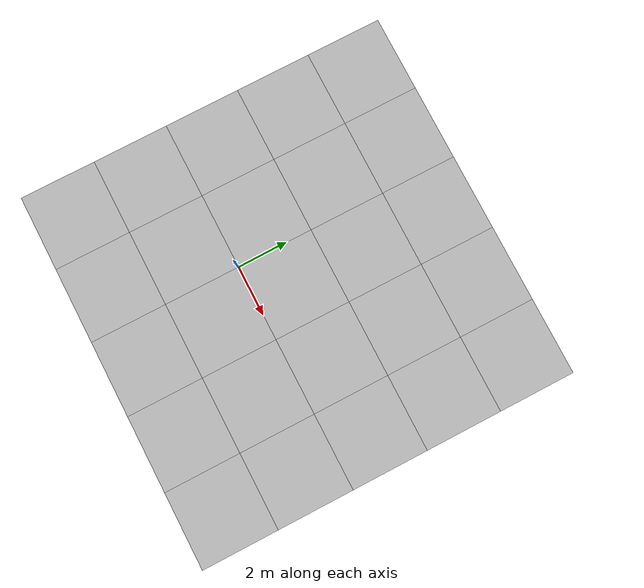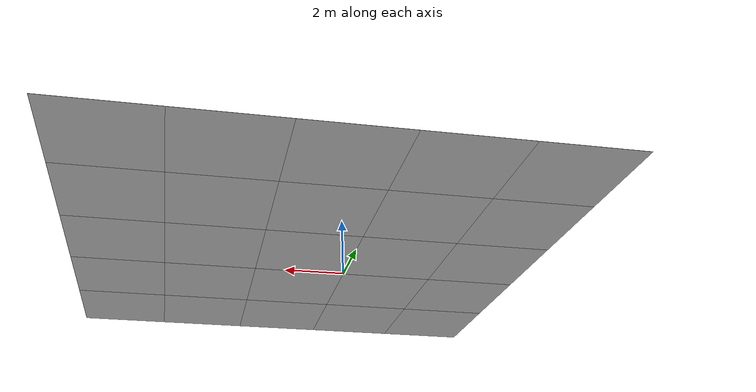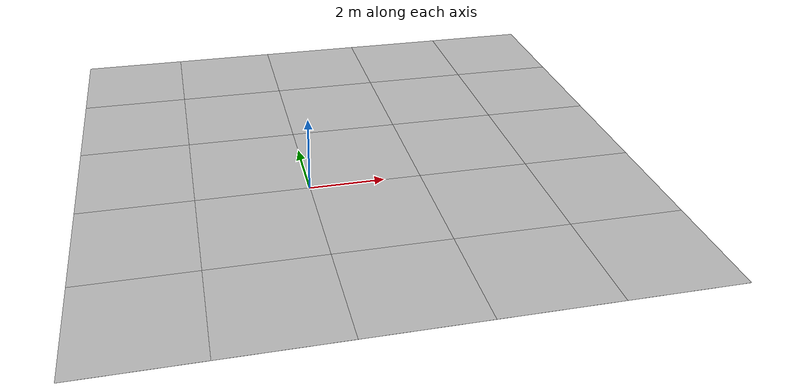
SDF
<?xml version="1.0" ?>
<sdf version="1.5">

<model name="ground_concrete">
      <static>true</static>
      <link name='link'>
      <collision name='collision'>
      <pose>1.5 1.5 0 0 0 0</pose>
        <geometry>
          <plane>
            <normal>0 0 1</normal>
            <size>15 15</size>
          </plane>
        </geometry>
        <surface>
          <friction>
            <ode>
              <mu>0.2</mu>
              <mu2>.2</mu2>
            </ode>
          </friction>
        </surface>
      </collision>

<!-- Column 1: x=-4.5 -->
      <visual name='visual_-2_-2'>
        <pose>-4.5 -4.5 0 0 0 0</pose>
        <cast_shadows>false</cast_shadows>
        <geometry>
          <plane>
            <normal>0 0 1</normal>
            <size>3 3</size>
          </plane>
        </geometry>
        <material>
          <script>
            <uri>model://ground_concrete/materials/scripts</uri>
            <uri>model://ground_concrete/materials/textures</uri>
            <name>vrc/ground_concrete</name>
          </script>
        </material>
      </visual>

      <visual name='visual_-2_-1'>
        <pose>-4.5 -1.5 0 0 0 0</pose>
        <cast_shadows>false</cast_shadows>
        <geometry>
          <plane>
            <normal>0 0 1</normal>
            <size>3 3</size>
          </plane>
        </geometry>
        <material>
          <script>
            <uri>model://ground_concrete/materials/scripts</uri>
            <uri>model://ground_concrete/materials/textures</uri>
            <name>vrc/ground_concrete</name>
          </script>
        </material>
      </visual>

      <visual name='visual_-2_1'>
        <pose>-4.5 1.5 0 0 0 0</pose>
        <cast_shadows>false</cast_shadows>
        <geometry>
          <plane>
            <normal>0 0 1</normal>
            <size>3 3</size>
          </plane>
        </geometry>
        <material>
          <script>
            <uri>model://ground_concrete/materials/scripts</uri>
            <uri>model://ground_concrete/materials/textures</uri>
            <name>vrc/ground_concrete</name>
          </script>
        </material>
      </visual>

      <visual name='visual_-2_2'>
        <pose>-4.5 4.5 0 0 0 0</pose>
        <cast_shadows>false</cast_shadows>
        <geometry>
          <plane>
            <normal>0 0 1</normal>
            <size>3 3</size>
          </plane>
        </geometry>
        <material>
          <script>
            <uri>model://ground_concrete/materials/scripts</uri>
            <uri>model://ground_concrete/materials/textures</uri>
            <name>vrc/ground_concrete</name>
          </script>
        </material>
      </visual>

      <visual name='visual_-2_3'>
        <pose>-4.5 7.5 0 0 0 0</pose>
        <cast_shadows>false</cast_shadows>
        <geometry>
          <plane>
            <normal>0 0 1</normal>
            <size>3 3</size>
          </plane>
        </geometry>
        <material>
          <script>
            <uri>model://ground_concrete/materials/scripts</uri>
            <uri>model://ground_concrete/materials/textures</uri>
            <name>vrc/ground_concrete</name>
          </script>
        </material>
      </visual>

<!-- Column 2: x=-1.5 -->
      <visual name='visual_-1_-2'>
        <pose>-1.5 -4.5 0 0 0 0</pose>
        <cast_shadows>false</cast_shadows>
        <geometry>
          <plane>
            <normal>0 0 1</normal>
            <size>3 3</size>
          </plane>
        </geometry>
        <material>
          <script>
            <uri>model://ground_concrete/materials/scripts</uri>
            <uri>model://ground_concrete/materials/textures</uri>
            <name>vrc/ground_concrete</name>
          </script>
        </material>
      </visual>

      <visual name='visual_-1_-1'>
        <pose>-1.5 -1.5 0 0 0 0</pose>
        <cast_shadows>false</cast_shadows>
        <geometry>
          <plane>
            <normal>0 0 1</normal>
            <size>3 3</size>
          </plane>
        </geometry>
        <material>
          <script>
            <uri>model://ground_concrete/materials/scripts</uri>
            <uri>model://ground_concrete/materials/textures</uri>
            <name>vrc/ground_concrete</name>
          </script>
        </material>
      </visual>
      <visual name='visual_-1_1'>
        <pose>-1.5 1.5 0 0 0 0</pose>
        <cast_shadows>false</cast_shadows>
        <geometry>
          <plane>
            <normal>0 0 1</normal>
            <size>3 3</size>
          </plane>
        </geometry>
        <material>
          <script>
            <uri>model://ground_concrete/materials/scripts</uri>
            <uri>model://ground_concrete/materials/textures</uri>
            <name>vrc/ground_concrete</name>
          </script>
        </material>
      </visual>

      <visual name='visual_-1_2'>
        <pose>-1.5 4.5 0 0 0 0</pose>
        <cast_shadows>false</cast_shadows>
        <geometry>
          <plane>
            <normal>0 0 1</normal>
            <size>3 3</size>
          </plane>
        </geometry>
        <material>
          <script>
            <uri>model://ground_concrete/materials/scripts</uri>
            <uri>model://ground_concrete/materials/textures</uri>
            <name>vrc/ground_concrete</name>
          </script>
        </material>
      </visual>

      <visual name='visual_-1_3'>
        <pose>-1.5 7.5 0 0 0 0</pose>
        <cast_shadows>false</cast_shadows>
        <geometry>
          <plane>
            <normal>0 0 1</normal>
            <size>3 3</size>
          </plane>
        </geometry>
        <material>
          <script>
            <uri>model://ground_concrete/materials/scripts</uri>
            <uri>model://ground_concrete/materials/textures</uri>
            <name>vrc/ground_concrete</name>
          </script>
        </material>
      </visual>

<!-- Column 3: x= 1.5 -->
      <visual name='visual_1_-2'>
        <pose>1.5 -4.5 0 0 0 0</pose>
        <cast_shadows>false</cast_shadows>
        <geometry>
          <plane>
            <normal>0 0 1</normal>
            <size>3 3</size>
          </plane>
        </geometry>
        <material>
          <script>
            <uri>model://ground_concrete/materials/scripts</uri>
            <uri>model://ground_concrete/materials/textures</uri>
            <name>vrc/ground_concrete</name>
          </script>
        </material>
      </visual>

      <visual name='visual_1_-1'>
        <pose>1.5 -1.5 0 0 0 0</pose>
        <cast_shadows>false</cast_shadows>
        <geometry>
          <plane>
            <normal>0 0 1</normal>
            <size>3 3</size>
          </plane>
        </geometry>
        <material>
          <script>
            <uri>model://ground_concrete/materials/scripts</uri>
            <uri>model://ground_concrete/materials/textures</uri>
            <name>vrc/ground_concrete</name>
          </script>
        </material>
      </visual>

      <visual name='visual_1_1'>
        <pose>1.5 1.5 0 0 0 0</pose>
        <cast_shadows>false</cast_shadows>
        <geometry>
          <plane>
            <normal>0 0 1</normal>
            <size>3 3</size>
          </plane>
        </geometry>
        <material>
          <script>
            <uri>model://ground_concrete/materials/scripts</uri>
            <uri>model://ground_concrete/materials/textures</uri>
            <name>vrc/ground_concrete</name>
          </script>
        </material>
      </visual>

      <visual name='visual_1_2'>
        <pose>1.5 4.5 0 0 0 0</pose>
        <cast_shadows>false</cast_shadows>
        <geometry>
          <plane>
            <normal>0 0 1</normal>
            <size>3 3</size>
          </plane>
        </geometry>
        <material>
          <script>
            <uri>model://ground_concrete/materials/scripts</uri>
            <uri>model://ground_concrete/materials/textures</uri>
            <name>vrc/ground_concrete</name>
          </script>
        </material>
      </visual>

      <visual name='visual_1_3'>
        <pose>1.5 7.5 0 0 0 0</pose>
        <cast_shadows>false</cast_shadows>
        <geometry>
          <plane>
            <normal>0 0 1</normal>
            <size>3 3</size>
          </plane>
        </geometry>
        <material>
          <script>
            <uri>model://ground_concrete/materials/scripts</uri>
            <uri>model://ground_concrete/materials/textures</uri>
            <name>vrc/ground_concrete</name>
          </script>
        </material>
      </visual>

<!-- Column 4: x= 4.5 -->
      <visual name='visual_2_-2'>
        <pose>4.5 -4.5 0 0 0 0</pose>
        <cast_shadows>false</cast_shadows>
        <geometry>
          <plane>
            <normal>0 0 1</normal>
            <size>3 3</size>
          </plane>
        </geometry>
        <material>
          <script>
            <uri>model://ground_concrete/materials/scripts</uri>
            <uri>model://ground_concrete/materials/textures</uri>
            <name>vrc/ground_concrete</name>
          </script>
        </material>
      </visual>

      <visual name='visual_2_-1'>
        <pose>4.5 -1.5 0 0 0 0</pose>
        <cast_shadows>false</cast_shadows>
        <geometry>
          <plane>
            <normal>0 0 1</normal>
            <size>3 3</size>
          </plane>
        </geometry>
        <material>
          <script>
            <uri>model://ground_concrete/materials/scripts</uri>
            <uri>model://ground_concrete/materials/textures</uri>
            <name>vrc/ground_concrete</name>
          </script>
        </material>
      </visual>

      <visual name='visual_2_1'>
        <pose>4.5 1.5 0 0 0 0</pose>
        <cast_shadows>false</cast_shadows>
        <geometry>
          <plane>
            <normal>0 0 1</normal>
            <size>3 3</size>
          </plane>
        </geometry>
        <material>
          <script>
            <uri>model://ground_concrete/materials/scripts</uri>
            <uri>model://ground_concrete/materials/textures</uri>
            <name>vrc/ground_concrete</name>
          </script>
        </material>
      </visual>

      <visual name='visual_2_2'>
        <pose>4.5 4.5 0 0 0 0</pose>
        <cast_shadows>false</cast_shadows>
        <geometry>
          <plane>
            <normal>0 0 1</normal>
            <size>3 3</size>
          </plane>
        </geometry>
        <material>
          <script>
            <uri>model://ground_concrete/materials/scripts</uri>
            <uri>model://ground_concrete/materials/textures</uri>
            <name>vrc/ground_concrete</name>
          </script>
        </material>
      </visual>

      <visual name='visual_2_3'>
        <pose>4.5 7.5 0 0 0 0</pose>
        <cast_shadows>false</cast_shadows>
        <geometry>
          <plane>
            <normal>0 0 1</normal>
            <size>3 3</size>
          </plane>
        </geometry>
        <material>
          <script>
            <uri>model://ground_concrete/materials/scripts</uri>
            <uri>model://ground_concrete/materials/textures</uri>
            <name>vrc/ground_concrete</name>
          </script>
        </material>
      </visual>

<!-- Column 5: x= 7.5 -->
      <visual name='visual_3_-2'>
        <pose>7.5 -4.5 0 0 0 0</pose>
        <cast_shadows>false</cast_shadows>
        <geometry>
          <plane>
            <normal>0 0 1</normal>
            <size>3 3</size>
          </plane>
        </geometry>
        <material>
          <script>
            <uri>model://ground_concrete/materials/scripts</uri>
            <uri>model://ground_concrete/materials/textures</uri>
            <name>vrc/ground_concrete</name>
          </script>
        </material>
      </visual>

      <visual name='visual_3_-1'>
        <pose>7.5 -1.5 0 0 0 0</pose>
        <cast_shadows>false</cast_shadows>
        <geometry>
          <plane>
            <normal>0 0 1</normal>
            <size>3 3</size>
          </plane>
        </geometry>
        <material>
          <script>
            <uri>model://ground_concrete/materials/scripts</uri>
            <uri>model://ground_concrete/materials/textures</uri>
            <name>vrc/ground_concrete</name>
          </script>
        </material>
      </visual>

      <visual name='visual_3_1'>
        <pose>7.5 1.5 0 0 0 0</pose>
        <cast_shadows>false</cast_shadows>
        <geometry>
          <plane>
            <normal>0 0 1</normal>
            <size>3 3</size>
          </plane>
        </geometry>
        <material>
          <script>
            <uri>model://ground_concrete/materials/scripts</uri>
            <uri>model://ground_concrete/materials/textures</uri>
            <name>vrc/ground_concrete</name>
          </script>
        </material>
      </visual>

      <visual name='visual_3_2'>
        <pose>7.5 4.5 0 0 0 0</pose>
        <cast_shadows>false</cast_shadows>
        <geometry>
          <plane>
            <normal>0 0 1</normal>
            <size>3 3</size>
          </plane>
        </geometry>
        <material>
          <script>
            <uri>model://ground_concrete/materials/scripts</uri>
            <uri>model://ground_concrete/materials/textures</uri>
            <name>vrc/ground_concrete</name>
          </script>
        </material>
      </visual>

      <visual name='visual_3_3'>
        <pose>7.5 7.5 0 0 0 0</pose>
        <cast_shadows>false</cast_shadows>
        <geometry>
          <plane>
            <normal>0 0 1</normal>
            <size>3 3</size>
          </plane>
        </geometry>
        <material>
          <script>
            <uri>model://ground_concrete/materials/scripts</uri>
            <uri>model://ground_concrete/materials/textures</uri>
            <name>vrc/ground_concrete</name>
          </script>
        </material>
      </visual>

      </link>
    </model>

</sdf>
